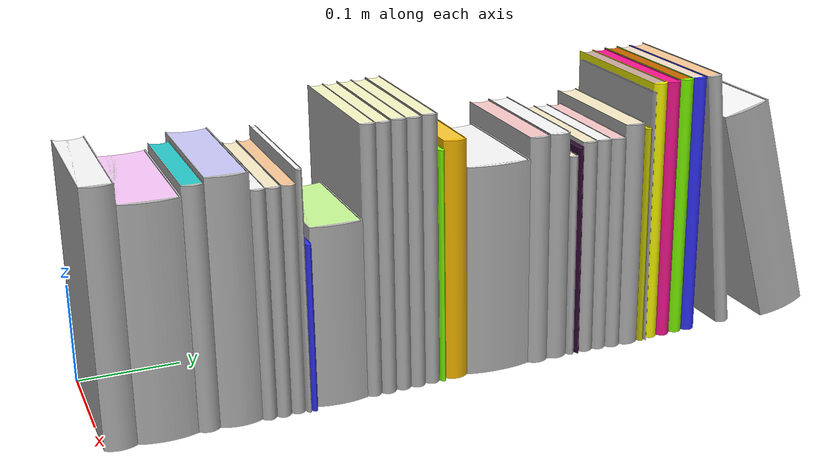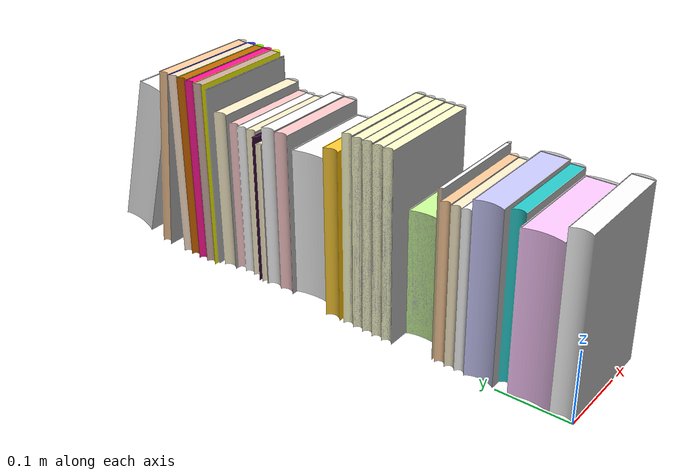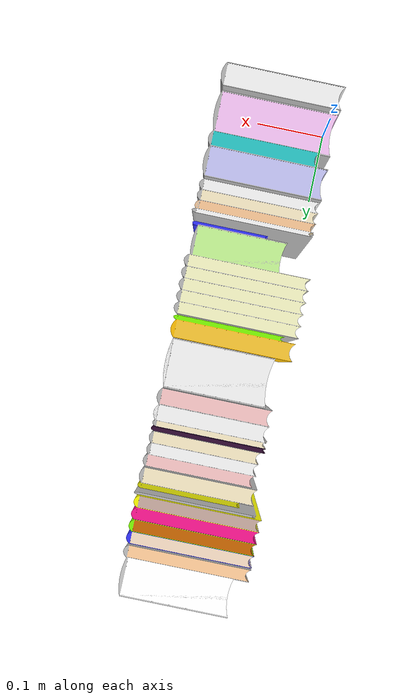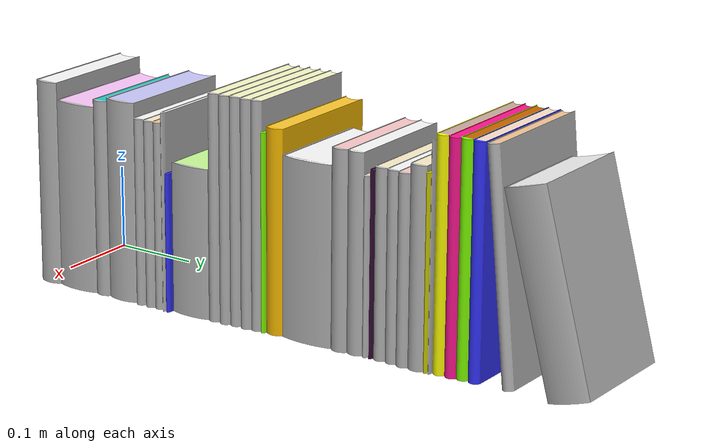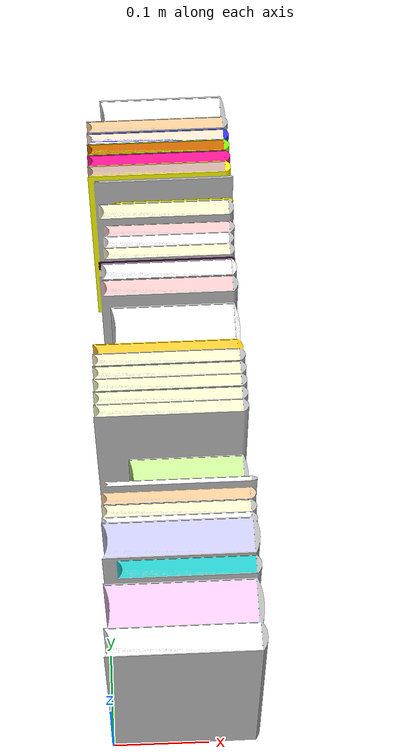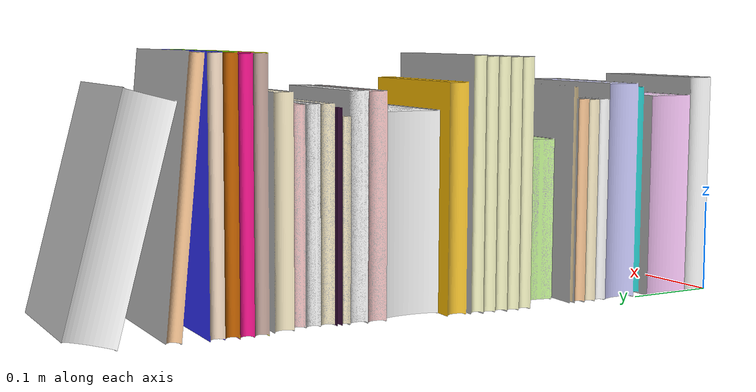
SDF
<?xml version="1.0"?>

<sdf version="1.4">
    <model name="books">
        <static>true</static>
        <link name="books_link">

            <visual name="books_mesh">
                <geometry>
                    <mesh>
                        <uri>model://books/meshes/model.dae</uri>
                    </mesh>
                </geometry>
            </visual>

            <collision name="books_collison">
                <pose> 0.073440 0.355108 0.132534 0 0 0</pose>
                <geometry>
                    <box>
                        <size>0.176458 0.770352 0.287780</size>
                    </box>
                </geometry>
            </collision>

        </link>
    </model>
</sdf>
